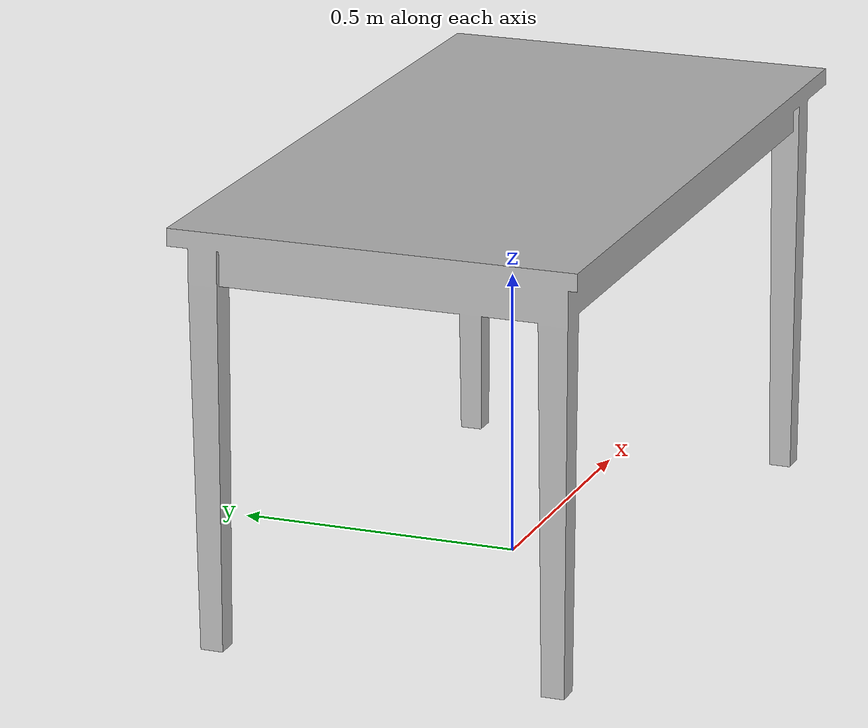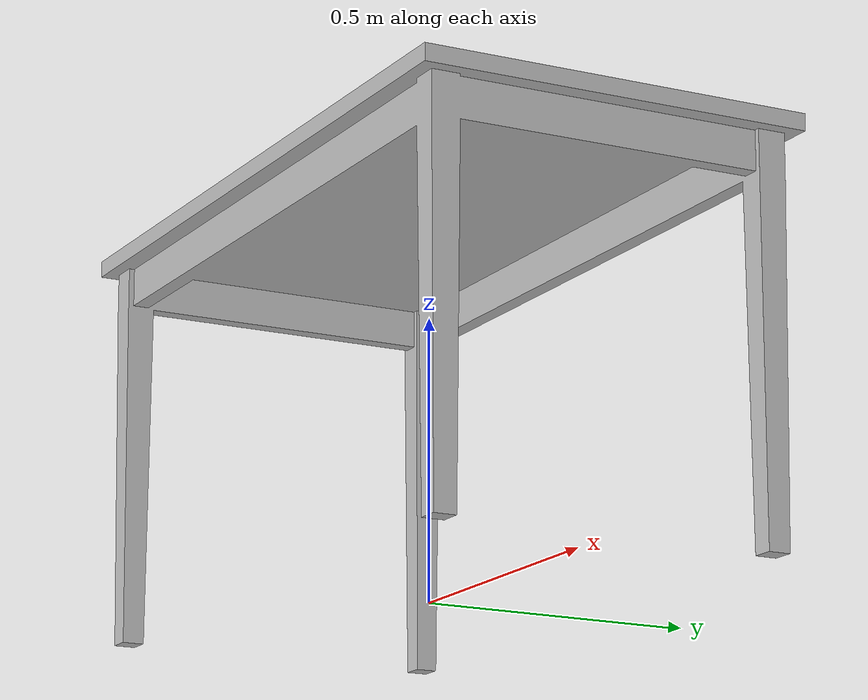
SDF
<?xml version="1.0" ?>
<sdf version="1.5">
  <model name="table_low_poly">
    <static>true</static>
    <link name="link">
      <pose>0 0 0 0 0 0</pose>
      <inertial>
        <mass>100.0</mass>
        <inertia>
          <ixx>100.0</ixx>
          <ixy>0</ixy>
          <ixz>0</ixz>
          <iyy>100.0</iyy>
          <iyz>0</iyz>
          <izz>100.0</izz>
        </inertia>
      </inertial>

      <collision name="collision">
        <geometry>
          <mesh>
            <uri>model://table_low_poly/meshes/table.dae</uri>
          </mesh>
        </geometry>
      </collision>

      <visual name="visual">
        <geometry>
          <mesh>
            <uri>model://table_low_poly/meshes/table.dae</uri>
          </mesh>
        </geometry>
      </visual>

    </link>
  </model>
</sdf>
